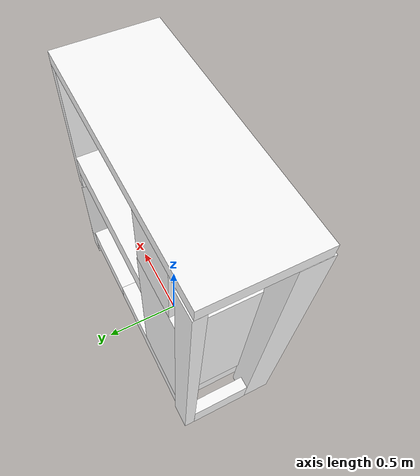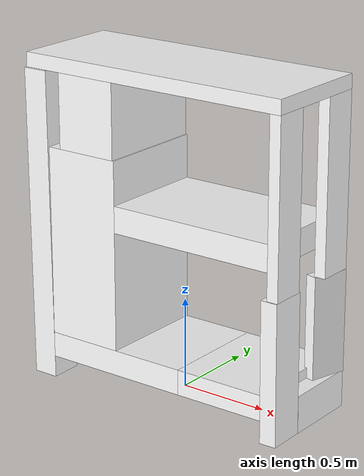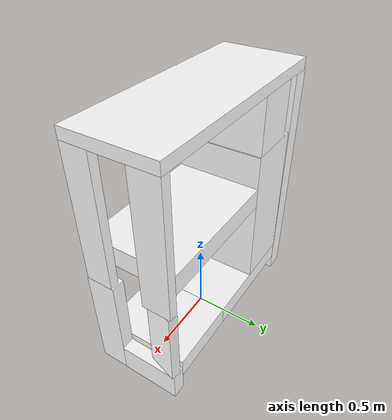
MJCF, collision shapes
<mujoco model="control_box">
  <default>
    <default class="visual">
      <geom group="1" type="mesh" contype="0" conaffinity="0" density="100"/>
    </default>
    <default class="collision">
      <geom group="0" type="mesh" density="100" solimp="0.95 0.98 0.001" solref="0.004 1" rgba="1 1 1 0.25"/>
    </default>
  </default>
  <asset>
    <texture type="2d" name="Switch_Box_Rack_AO" file="textures/Switch_Box_Rack_AO.png"/>
    <material name="Black_Paint_01" texture="Switch_Box_Rack_AO" specular="0.5" shininess="0.25" rgba="0.1 0.1 0.1 1"/>
    <material name="Grey_Paint_01" texture="Switch_Box_Rack_AO" specular="0.5" shininess="0.25" rgba="0.4 0.4 0.4 1"/>
    <material name="Metal_Car_Body" texture="Switch_Box_Rack_AO" specular="0.5" shininess="0.25"/>
    <material name="White_Paint_01" texture="Switch_Box_Rack_AO" specular="0.5" shininess="0.25"/>
    <mesh file="meshes/control_box_0.obj" name="control_box_0"/>
    <mesh file="meshes/control_box_1.obj" name="control_box_1"/>
    <mesh file="meshes/control_box_2.obj" name="control_box_2"/>
    <mesh file="meshes/control_box_3.obj" name="control_box_3"/>
  </asset>
  <worldbody>
    <body>
      <body name="object">
        <geom mesh="control_box_0" material="Grey_Paint_01" class="visual"/>
        <geom mesh="control_box_1" material="Black_Paint_01" class="visual"/>
        <geom mesh="control_box_2" material="White_Paint_01" class="visual"/>
        <geom mesh="control_box_3" material="Metal_Car_Body" class="visual"/>
        <geom name="collider_box_ebe8eabb" type="box" pos="-0.7523774546429488 0.055325995 0.08321655404005365" size="0.03716009943989884 0.0930225309904091 0.187409905" quat="0.0027438639802001073 0.0027438639802000583 -0.7071014575083681 0.7071014575083678" class="collision"/>
        <geom name="collider_box_dfb1d16f" type="box" pos="-0.23248127499999993 1.1042268201446442e-17 0.18033392499999998" size="0.06947789500000001 0.30964686 0.416825745" quat="2.164890140588733e-17 0.7071067811865475 0.0 -0.7071067811865475" class="collision"/>
        <geom name="collider_box_d1b3535b" type="box" pos="0.75788137 -0.21537172999999998 1.22656863" size="0.03131927000000001 0.09419833999999999 0.47005331" quat="0.0 0.0 1.0 0.0" class="collision"/>
        <geom name="collider_box_8998e903" type="box" pos="0.75788739 0.21086863 1.22656863" size="0.03131308999999999 0.09870143999999999 0.47005331" quat="0.0 0.0 1.0 0.0" class="collision"/>
        <geom name="collider_box_ff97e606" type="box" pos="-0.719134747618195 0.27961773907366216 0.8427010012182151" size="0.03358422238979289 0.0702302728174371 0.8525763041737647" quat="0.7033101376993546 -0.0016277700689558067 0.001698996333175307 0.710879254153177" class="collision"/>
        <geom name="collider_box_3e2e4da6" type="box" pos="0.7425197161333342 -0.20986200712943953 0.3733753213987177" size="0.04692252372068123 0.10191625897510465 0.38409277509730266" quat="0.0001248556050212677 -0.00169189853553736 0.9999864673979844 0.004918019044643969" class="collision"/>
        <geom name="collider_box_835b2739" type="box" pos="0.44023669000000004 2.6956722663786284e-17 0.18028169" size="0.06942572 0.25576059 0.30950737" quat="0.5000000000000001 -0.5000000000000001 0.5000000000000001 0.5000000000000001" class="collision"/>
        <geom name="collider_box_698475ae" type="box" pos="0.25227429500000004 6.830008130623851e-06 0.9768140494090914" size="0.07292492832885222 0.30966203317423635 0.474287805" quat="7.423379164761322e-05 0.7071067772899253 -7.423379164765577e-05 -0.7071067772899255" class="collision"/>
        <geom name="collider_box_e7a2e543" type="box" pos="-0.403212145 2.4689623137579423e-17 1.49208214" size="0.17319690499999998 0.20306891000000005 0.30964686" quat="2.1648901405887348e-17 -0.0 0.7071067811865472 0.7071067811865476" class="collision"/>
        <geom name="collider_box_16580149" type="box" pos="0.7430019419495995 0.10166285589324099 0.09211309999999999" size="0.04655626591901202 0.10182063 0.20770286699007384" quat="0.7071059834816489 0.7071059834816489 0.0010621320304139376 0.001062132030414003" class="collision"/>
        <geom name="collider_box_dfcb42c3" type="box" pos="-0.7203299514363931 -0.2275788788003295 0.8426981332485832" size="0.06992813082131594 0.0888452267272427 0.853296738521863" quat="0.9999869604782904 0.004989505924029776 -0.0007677871357757662 0.0007708481940371842" class="collision"/>
        <geom name="collider_box_d9d57bc6" type="box" pos="-0.43836051499999995 -2.6841840078366762e-17 0.7694193699999999" size="0.21634700499999998 0.30964686 0.5195939199999999" quat="0.0 0.0 1.0 0.0" class="collision"/>
        <geom name="collider_box_84f7739e" type="box" pos="0.7375058921086203 0.2087561142233311 0.475224525" size="0.03223058932562728 0.1049120576169541 0.281290795" quat="0.0 -0.9906322185182546 0.13655697577788195 0.0" class="collision"/>
        <geom name="collider_box_2e902726" type="box" pos="2.9336369543128617e-08 4.788507338612207e-18 1.7349295062304169" size="0.0397765175140532 0.3096468600000001 0.7890267399736532" quat="0.7071038919179167 -0.0 -0.7071096704433723 3.528247968548471e-17" class="collision"/>
      </body>
      <site name="bottom_site" pos="0 0 -0.0" rgba="1 1 1 0.5" size="0.005"/>
      <site name="top_site" pos="0 0 1.765" rgba="1 1 1 0.5" size="0.005"/>
      <site name="horizontal_radius_site" pos="0.78 0.3 0" rgba="1 1 1 0.5" size="0.005"/>
    </body>
  </worldbody>
</mujoco>
